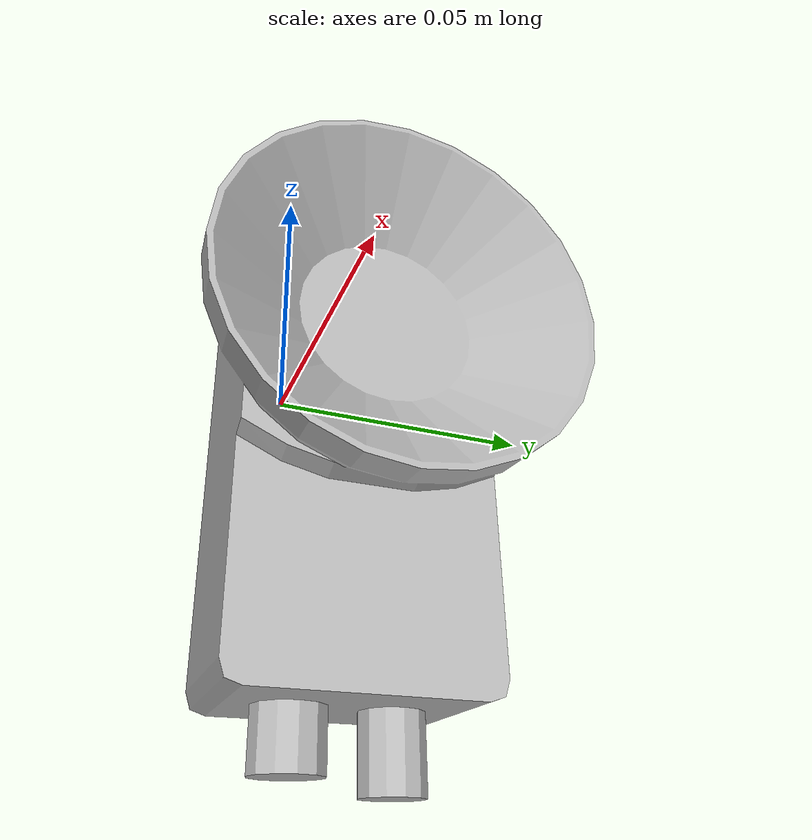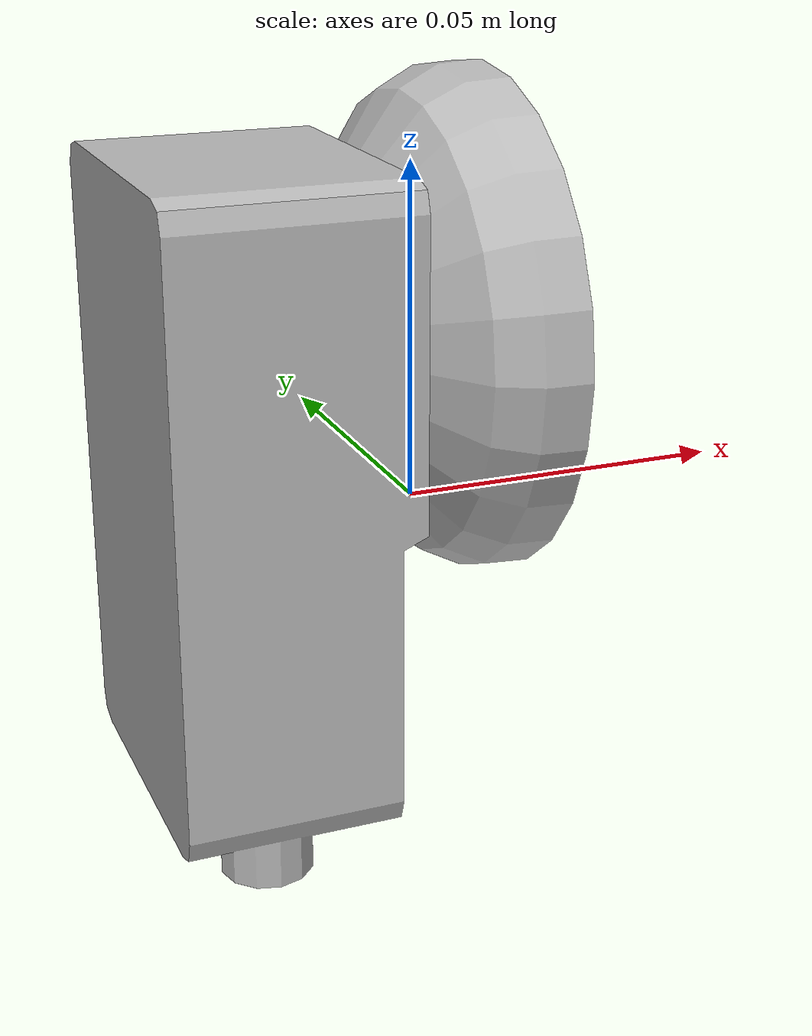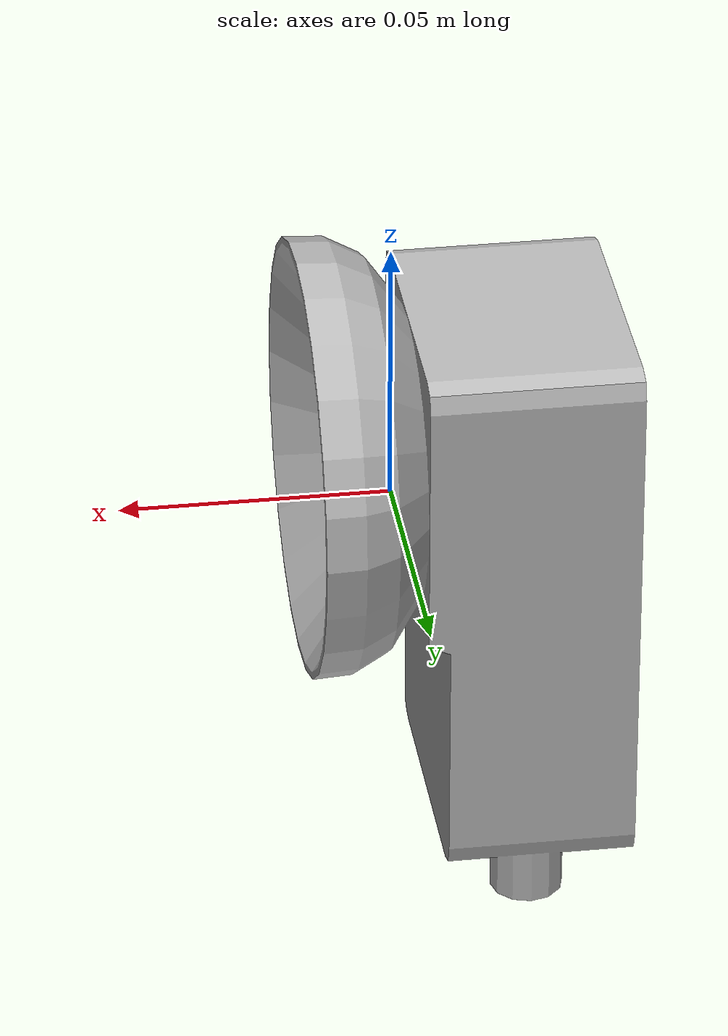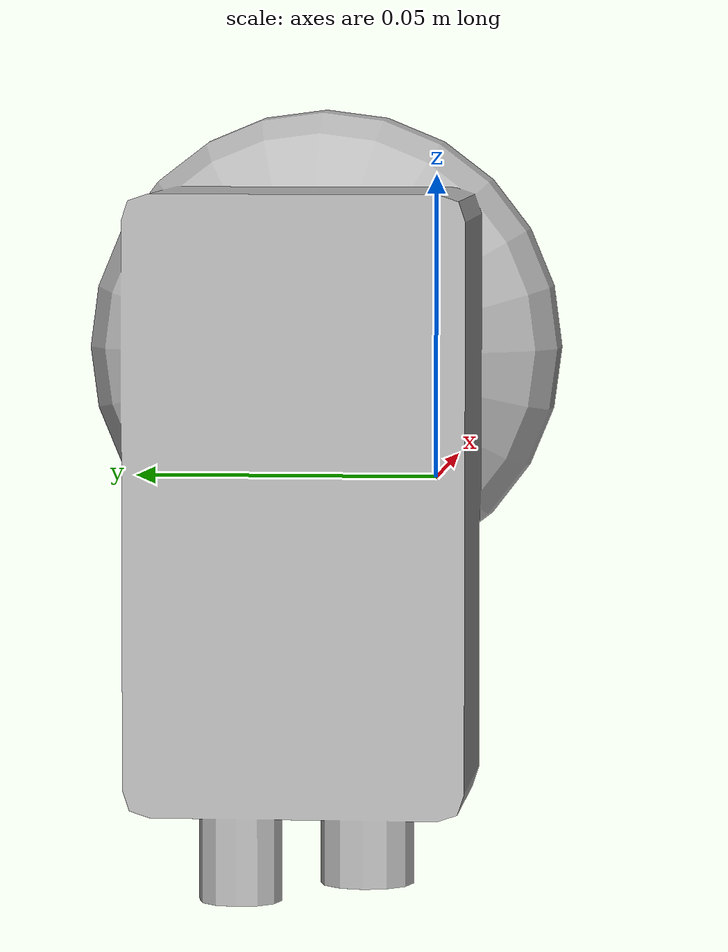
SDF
<?xml version="1.0" ?>
<sdf version="1.6">
  <model name="logical_camera_1">
    <plugin name="ros_logical_camera_1" filename="libROSLogicalCameraPlugin.so">
      <robotNamespace>/mte_roblab</robotNamespace>
    </plugin>
    <link name="logical_camera_1_link">
      <gravity>false</gravity>
      <inertial>
        <mass>0.1</mass>
        <inertia>
          <ixx>0.000166667</ixx>
          <iyy>0.000166667</iyy>
          <izz>0.000166667</izz>
        </inertia>
      </inertial>

      <collision name="collision">
        <pose>0 0.02 0 0 0 -1.5708</pose>
        <geometry>
          <mesh>
            <uri>model://logical_camera1/meshes/camera.dae</uri>
          </mesh>
        </geometry>
      </collision>

      <visual name="visual">
        <pose>0 0.02 0 0 0 -1.5708</pose>
        <geometry>
          <mesh>
            <uri>model://logical_camera1/meshes/camera.dae</uri>
          </mesh>
        </geometry>
      </visual>

      <sensor name="logical_camera_1" type="logical_camera">

        <logical_camera>
          <near>0.2</near>
          <far>1.0</far>
          <horizontal_fov>1.1</horizontal_fov>
          <aspect_ratio>2.0</aspect_ratio>
        </logical_camera>

        <visualize>true</visualize>
        <always_on>true</always_on>
        <update_rate>10</update_rate>
        <topic>logical_camera_1</topic>
      </sensor>
    </link>
  </model>
</sdf>
